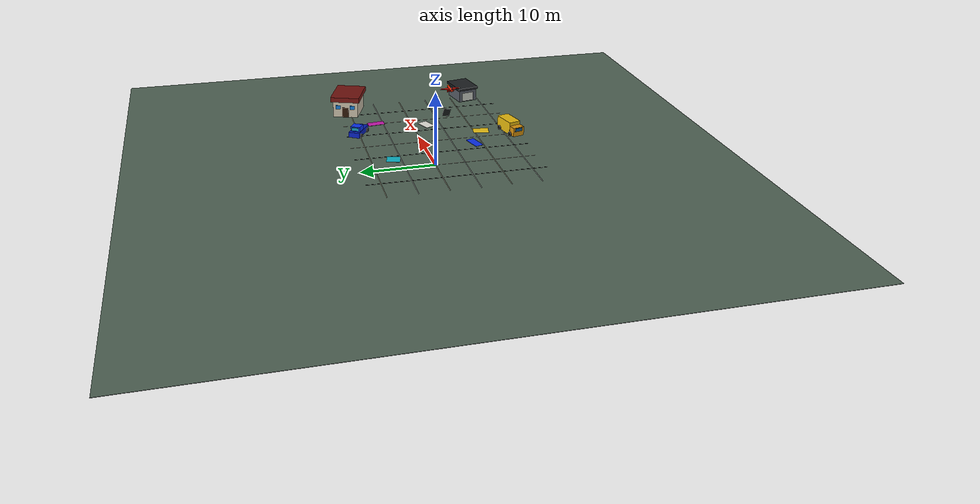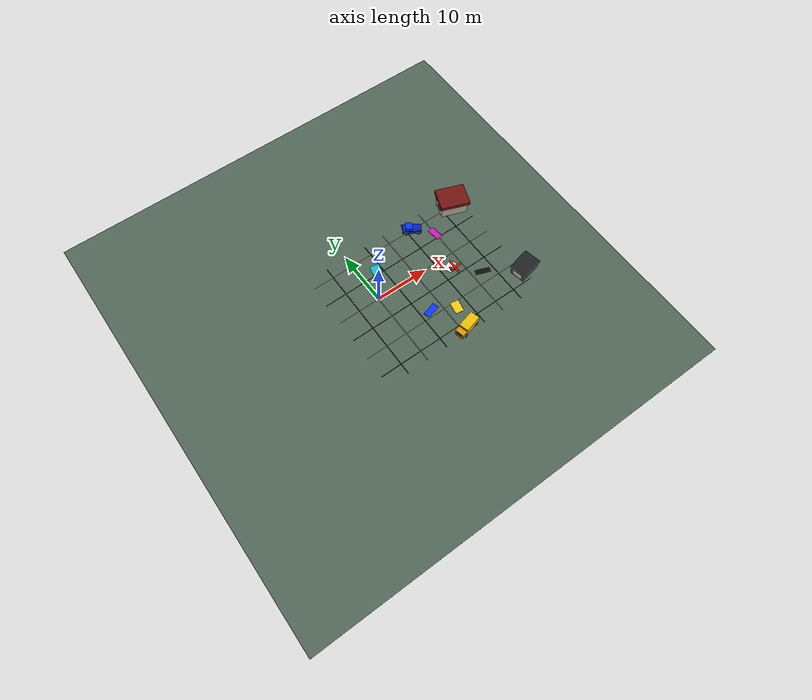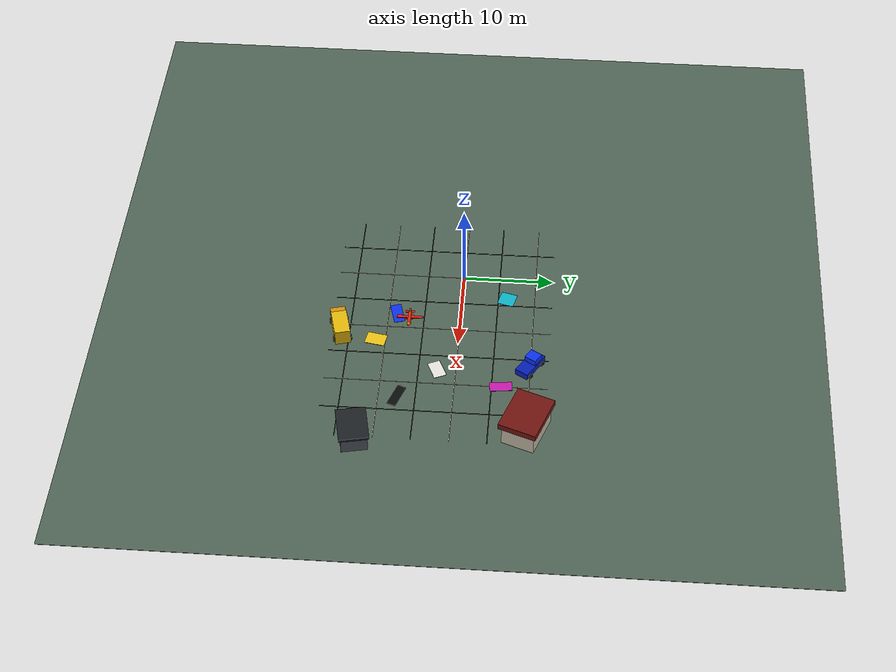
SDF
<sdf version="1.9">
 <world name="vulture_x_test">
  <physics name="1ms" type="ignore">
   <max_step_size>0.001</max_step_size>
   <real_time_factor>1.0</real_time_factor>
  </physics>
  <plugin filename="gz-sim-physics-system" name="gz::sim::systems::Physics"/>
  <plugin filename="gz-sim-sensors-system" name="gz::sim::systems::Sensors">
   <render_engine>ogre2</render_engine>
  </plugin>
  <plugin filename="gz-sim-user-commands-system" name="gz::sim::systems::UserCommands"/>
  <plugin filename="gz-sim-scene-broadcaster-system" name="gz::sim::systems::SceneBroadcaster"/>
  <plugin filename="gz-sim-imu-system" name="gz::sim::systems::Imu"/>
  <plugin filename="gz-sim-navsat-system" name="gz::sim::systems::NavSat"/>
  <scene><ambient>0.9 0.9 0.9</ambient><background>0.65 0.72 0.78</background></scene>
  <spherical_coordinates>
   <latitude_deg>-35.363262</latitude_deg>
   <longitude_deg>149.165237</longitude_deg>
   <elevation>584</elevation>
   <heading_deg>0</heading_deg>
   <surface_model>EARTH_WGS84</surface_model>
  </spherical_coordinates>
  <light type="directional" name="sun">
   <pose>0 0 20 0 0 0</pose>
   <diffuse>0.9 0.9 0.85 1</diffuse>
   <specular>0.3 0.3 0.3 1</specular>
   <attenuation>
    <range>2000</range>
    <constant>0.9</constant>
    <linear>0.01</linear>
    <quadratic>0.001</quadratic>
   </attenuation>
   <direction>-0.4 0.2 -0.9</direction>
  </light>
  <model name="open_test_area">
   <static>true</static>
   <link name="link">
    <collision name="ground_collision"><geometry><box><size>80 80 0.05</size></box></geometry></collision>
    <visual name="ground_visual">
     <geometry><box><size>80 80 0.05</size></box></geometry>
     <material><ambient>0.26 0.32 0.28 1</ambient><diffuse>0.32 0.40 0.34 1</diffuse></material>
    </visual>
    <visual name="center_line">
     <pose>8 0 0.04 0 0 0</pose>
     <geometry><box><size>28 0.08 0.02</size></box></geometry>
     <material><ambient>1 1 1 1</ambient><diffuse>1 1 1 1</diffuse></material>
    </visual>
   </link>
  </model>
  <model name="tracking_feature_field">
   <static>true</static>
   <link name="link">
    <visual name="grid_x_neg12">
     <pose>8 -12 0.075 0 0 0</pose>
     <geometry><box><size>32 0.08 0.02</size></box></geometry>
     <material><ambient>0.08 0.09 0.08 1</ambient><diffuse>0.08 0.09 0.08 1</diffuse></material>
    </visual>
    <visual name="grid_x_neg8">
     <pose>8 -8 0.075 0 0 0</pose>
     <geometry><box><size>32 0.08 0.02</size></box></geometry>
     <material><ambient>0.88 0.88 0.76 1</ambient><diffuse>0.88 0.88 0.76 1</diffuse></material>
    </visual>
    <visual name="grid_x_neg4">
     <pose>8 -4 0.075 0 0 0</pose>
     <geometry><box><size>32 0.08 0.02</size></box></geometry>
     <material><ambient>0.08 0.09 0.08 1</ambient><diffuse>0.08 0.09 0.08 1</diffuse></material>
    </visual>
    <visual name="grid_x_0">
     <pose>8 0 0.075 0 0 0</pose>
     <geometry><box><size>32 0.08 0.02</size></box></geometry>
     <material><ambient>0.88 0.88 0.76 1</ambient><diffuse>0.88 0.88 0.76 1</diffuse></material>
    </visual>
    <visual name="grid_x_4">
     <pose>8 4 0.075 0 0 0</pose>
     <geometry><box><size>32 0.08 0.02</size></box></geometry>
     <material><ambient>0.08 0.09 0.08 1</ambient><diffuse>0.08 0.09 0.08 1</diffuse></material>
    </visual>
    <visual name="grid_x_8">
     <pose>8 8 0.075 0 0 0</pose>
     <geometry><box><size>32 0.08 0.02</size></box></geometry>
     <material><ambient>0.88 0.88 0.76 1</ambient><diffuse>0.88 0.88 0.76 1</diffuse></material>
    </visual>
    <visual name="grid_y_neg4">
     <pose>-4 -2 0.078 0 0 0</pose>
     <geometry><box><size>0.08 24 0.02</size></box></geometry>
     <material><ambient>0.10 0.11 0.10 1</ambient><diffuse>0.10 0.11 0.10 1</diffuse></material>
    </visual>
    <visual name="grid_y_0">
     <pose>0 -2 0.078 0 0 0</pose>
     <geometry><box><size>0.08 24 0.02</size></box></geometry>
     <material><ambient>0.86 0.88 0.80 1</ambient><diffuse>0.86 0.88 0.80 1</diffuse></material>
    </visual>
    <visual name="grid_y_4">
     <pose>4 -2 0.078 0 0 0</pose>
     <geometry><box><size>0.08 24 0.02</size></box></geometry>
     <material><ambient>0.10 0.11 0.10 1</ambient><diffuse>0.10 0.11 0.10 1</diffuse></material>
    </visual>
    <visual name="grid_y_8">
     <pose>8 -2 0.078 0 0 0</pose>
     <geometry><box><size>0.08 24 0.02</size></box></geometry>
     <material><ambient>0.86 0.88 0.80 1</ambient><diffuse>0.86 0.88 0.80 1</diffuse></material>
    </visual>
    <visual name="grid_y_12">
     <pose>12 -2 0.078 0 0 0</pose>
     <geometry><box><size>0.08 24 0.02</size></box></geometry>
     <material><ambient>0.10 0.11 0.10 1</ambient><diffuse>0.10 0.11 0.10 1</diffuse></material>
    </visual>
    <visual name="grid_y_16">
     <pose>16 -2 0.078 0 0 0</pose>
     <geometry><box><size>0.08 24 0.02</size></box></geometry>
     <material><ambient>0.86 0.88 0.80 1</ambient><diffuse>0.86 0.88 0.80 1</diffuse></material>
    </visual>
    <visual name="grid_y_20">
     <pose>20 -2 0.078 0 0 0</pose>
     <geometry><box><size>0.08 24 0.02</size></box></geometry>
     <material><ambient>0.10 0.11 0.10 1</ambient><diffuse>0.10 0.11 0.10 1</diffuse></material>
    </visual>
    <visual name="blue_patch">
     <pose>6 -7 0.09 0 0 0.28</pose>
     <geometry><box><size>2.6 1.2 0.03</size></box></geometry>
     <material><ambient>0.05 0.20 0.95 1</ambient><diffuse>0.05 0.20 0.95 1</diffuse></material>
    </visual>
    <visual name="yellow_patch">
     <pose>10 -9 0.09 0 0 -0.18</pose>
     <geometry><box><size>1.6 2.2 0.03</size></box></geometry>
     <material><ambient>0.95 0.78 0.08 1</ambient><diffuse>0.95 0.78 0.08 1</diffuse></material>
    </visual>
    <visual name="white_patch">
     <pose>14 -2 0.09 0 0 0.42</pose>
     <geometry><box><size>2.2 1.4 0.03</size></box></geometry>
     <material><ambient>0.92 0.92 0.88 1</ambient><diffuse>0.92 0.92 0.88 1</diffuse></material>
    </visual>
    <visual name="dark_patch">
     <pose>18 -6 0.09 0 0 -0.35</pose>
     <geometry><box><size>2.8 1.0 0.03</size></box></geometry>
     <material><ambient>0.04 0.05 0.05 1</ambient><diffuse>0.04 0.05 0.05 1</diffuse></material>
    </visual>
    <visual name="cyan_patch">
     <pose>3 5 0.09 0 0 -0.25</pose>
     <geometry><box><size>1.8 1.8 0.03</size></box></geometry>
     <material><ambient>0.05 0.72 0.80 1</ambient><diffuse>0.05 0.72 0.80 1</diffuse></material>
    </visual>
    <visual name="magenta_patch">
     <pose>16 5 0.09 0 0 0.12</pose>
     <geometry><box><size>1.2 2.4 0.03</size></box></geometry>
     <material><ambient>0.80 0.10 0.70 1</ambient><diffuse>0.80 0.10 0.70 1</diffuse></material>
    </visual>
   </link>
  </model>
  <model name="small_house_cluster">
   <pose>22 8 0 0 0 -0.35</pose>
   <static>true</static>
   <link name="link">
    <visual name="house_body">
     <pose>0 0 1.2 0 0 0</pose>
     <geometry><box><size>4.8 3.6 2.4</size></box></geometry>
     <material><ambient>0.76 0.72 0.64 1</ambient><diffuse>0.76 0.72 0.64 1</diffuse></material>
    </visual>
    <visual name="roof">
     <pose>0 0 2.75 0 0 0</pose>
     <geometry><box><size>5.4 4.2 0.7</size></box></geometry>
     <material><ambient>0.45 0.08 0.06 1</ambient><diffuse>0.45 0.08 0.06 1</diffuse></material>
    </visual>
    <visual name="door">
     <pose>-2.42 0 0.75 0 0 0</pose>
     <geometry><box><size>0.04 0.9 1.5</size></box></geometry>
     <material><ambient>0.18 0.09 0.03 1</ambient><diffuse>0.18 0.09 0.03 1</diffuse></material>
    </visual>
    <visual name="window_left">
     <pose>-2.43 -1.05 1.55 0 0 0</pose>
     <geometry><box><size>0.04 0.65 0.55</size></box></geometry>
     <material>
      <ambient>0.08 0.45 0.78 1</ambient>
      <diffuse>0.08 0.45 0.78 1</diffuse>
      <emissive>0.02 0.08 0.12 1</emissive>
     </material>
    </visual>
    <visual name="window_right">
     <pose>-2.43 1.05 1.55 0 0 0</pose>
     <geometry><box><size>0.04 0.65 0.55</size></box></geometry>
     <material>
      <ambient>0.08 0.45 0.78 1</ambient>
      <diffuse>0.08 0.45 0.78 1</diffuse>
      <emissive>0.02 0.08 0.12 1</emissive>
     </material>
    </visual>
   </link>
  </model>
  <model name="garage_shed">
   <pose>24 -10 0 0 0 0.2</pose>
   <static>true</static>
   <link name="link">
    <visual name="shed_body">
     <pose>0 0 0.9 0 0 0</pose>
     <geometry><box><size>3.8 2.8 1.8</size></box></geometry>
     <material><ambient>0.34 0.36 0.40 1</ambient><diffuse>0.34 0.36 0.40 1</diffuse></material>
    </visual>
    <visual name="shed_roof">
     <pose>0 0 2.0 0 0 0</pose>
     <geometry><box><size>4.2 3.2 0.35</size></box></geometry>
     <material><ambient>0.12 0.13 0.14 1</ambient><diffuse>0.12 0.13 0.14 1</diffuse></material>
    </visual>
    <visual name="garage_door">
     <pose>-1.92 0 0.75 0 0 0</pose>
     <geometry><box><size>0.04 1.8 1.25</size></box></geometry>
     <material><ambient>0.80 0.82 0.78 1</ambient><diffuse>0.80 0.82 0.78 1</diffuse></material>
    </visual>
   </link>
  </model>
  <model name="blue_pickup_vehicle">
   <pose>13 8 0 0 0 -0.55</pose>
   <static>true</static>
   <link name="link">
    <visual name="body">
     <pose>0 0 0.45 0 0 0</pose>
     <geometry><box><size>3.4 1.55 0.75</size></box></geometry>
     <material><ambient>0.02 0.12 0.72 1</ambient><diffuse>0.02 0.12 0.72 1</diffuse></material>
    </visual>
    <visual name="cabin">
     <pose>-0.55 0 1.05 0 0 0</pose>
     <geometry><box><size>1.25 1.35 0.85</size></box></geometry>
     <material><ambient>0.04 0.20 0.95 1</ambient><diffuse>0.04 0.20 0.95 1</diffuse></material>
    </visual>
    <visual name="windshield">
     <pose>-1.2 0 1.14 0 0 0</pose>
     <geometry><box><size>0.06 1.05 0.45</size></box></geometry>
     <material><ambient>0.06 0.55 0.70 1</ambient><diffuse>0.06 0.55 0.70 1</diffuse></material>
    </visual>
    <visual name="wheel_fl">
     <pose>-1.05 -0.86 0.25 1.5708 0 0</pose>
     <geometry><cylinder><radius>0.28</radius><length>0.18</length></cylinder></geometry>
     <material><ambient>0.02 0.02 0.02 1</ambient><diffuse>0.02 0.02 0.02 1</diffuse></material>
    </visual>
    <visual name="wheel_fr">
     <pose>-1.05 0.86 0.25 1.5708 0 0</pose>
     <geometry><cylinder><radius>0.28</radius><length>0.18</length></cylinder></geometry>
     <material><ambient>0.02 0.02 0.02 1</ambient><diffuse>0.02 0.02 0.02 1</diffuse></material>
    </visual>
    <visual name="wheel_rl">
     <pose>1.15 -0.86 0.25 1.5708 0 0</pose>
     <geometry><cylinder><radius>0.28</radius><length>0.18</length></cylinder></geometry>
     <material><ambient>0.02 0.02 0.02 1</ambient><diffuse>0.02 0.02 0.02 1</diffuse></material>
    </visual>
    <visual name="wheel_rr">
     <pose>1.15 0.86 0.25 1.5708 0 0</pose>
     <geometry><cylinder><radius>0.28</radius><length>0.18</length></cylinder></geometry>
     <material><ambient>0.02 0.02 0.02 1</ambient><diffuse>0.02 0.02 0.02 1</diffuse></material>
    </visual>
   </link>
  </model>
  <model name="yellow_box_truck">
   <pose>9 -13 0 0 0 0.25</pose>
   <static>true</static>
   <link name="link">
    <visual name="cargo_box">
     <pose>0.35 0 0.95 0 0 0</pose>
     <geometry><box><size>3.2 1.7 1.8</size></box></geometry>
     <material><ambient>0.92 0.74 0.05 1</ambient><diffuse>0.92 0.74 0.05 1</diffuse></material>
    </visual>
    <visual name="cab">
     <pose>-1.65 0 0.75 0 0 0</pose>
     <geometry><box><size>1.3 1.65 1.25</size></box></geometry>
     <material><ambient>0.86 0.58 0.04 1</ambient><diffuse>0.86 0.58 0.04 1</diffuse></material>
    </visual>
    <visual name="truck_window">
     <pose>-2.32 0 1.05 0 0 0</pose>
     <geometry><box><size>0.05 1.1 0.45</size></box></geometry>
     <material><ambient>0.05 0.36 0.62 1</ambient><diffuse>0.05 0.36 0.62 1</diffuse></material>
    </visual>
    <visual name="truck_wheel_fl">
     <pose>-1.45 -0.92 0.28 1.5708 0 0</pose>
     <geometry><cylinder><radius>0.32</radius><length>0.2</length></cylinder></geometry>
     <material><ambient>0.02 0.02 0.02 1</ambient><diffuse>0.02 0.02 0.02 1</diffuse></material>
    </visual>
    <visual name="truck_wheel_fr">
     <pose>-1.45 0.92 0.28 1.5708 0 0</pose>
     <geometry><cylinder><radius>0.32</radius><length>0.2</length></cylinder></geometry>
     <material><ambient>0.02 0.02 0.02 1</ambient><diffuse>0.02 0.02 0.02 1</diffuse></material>
    </visual>
    <visual name="truck_wheel_rl">
     <pose>1.35 -0.92 0.28 1.5708 0 0</pose>
     <geometry><cylinder><radius>0.32</radius><length>0.2</length></cylinder></geometry>
     <material><ambient>0.02 0.02 0.02 1</ambient><diffuse>0.02 0.02 0.02 1</diffuse></material>
    </visual>
    <visual name="truck_wheel_rr">
     <pose>1.35 0.92 0.28 1.5708 0 0</pose>
     <geometry><cylinder><radius>0.32</radius><length>0.2</length></cylinder></geometry>
     <material><ambient>0.02 0.02 0.02 1</ambient><diffuse>0.02 0.02 0.02 1</diffuse></material>
    </visual>
   </link>
  </model>
  <model name="target_marker">
   <pose>12 -5 6.0 0 0 3.14159</pose>
   <static>true</static>
   <link name="link">
    <collision name="collision"><geometry><box><size>1.8 2.6 0.55</size></box></geometry></collision>
    <visual name="fuselage">
     <pose>0 0 0 0 1.5708 0</pose>
     <geometry><cylinder><radius>0.16</radius><length>1.8</length></cylinder></geometry>
     <material>
      <ambient>1.0 0.18 0.03 1</ambient>
      <diffuse>1.0 0.18 0.03 1</diffuse>
      <emissive>0.45 0.05 0.01 1</emissive>
     </material>
    </visual>
    <visual name="nose">
     <pose>-0.98 0 0 0 0 0</pose>
     <geometry><sphere><radius>0.22</radius></sphere></geometry>
     <material>
      <ambient>1.0 0.42 0.02 1</ambient>
      <diffuse>1.0 0.42 0.02 1</diffuse>
      <emissive>0.35 0.08 0.01 1</emissive>
     </material>
    </visual>
    <visual name="main_wing">
     <geometry><box><size>0.34 2.6 0.08</size></box></geometry>
     <material>
      <ambient>1.0 0.1 0.05 1</ambient>
      <diffuse>1.0 0.1 0.05 1</diffuse>
      <emissive>0.5 0.02 0.01 1</emissive>
     </material>
    </visual>
    <visual name="tailplane">
     <pose>0.74 0 0.02 0 0 0</pose>
     <geometry><box><size>0.26 0.95 0.06</size></box></geometry>
     <material>
      <ambient>0.95 0.12 0.03 1</ambient>
      <diffuse>0.95 0.12 0.03 1</diffuse>
      <emissive>0.35 0.02 0.01 1</emissive>
     </material>
    </visual>
    <visual name="high_visibility_keel">
     <pose>0.08 0 -0.22 0 0 0</pose>
     <geometry><box><size>0.12 0.85 0.36</size></box></geometry>
     <material>
      <ambient>1.0 0.08 0.02 1</ambient>
      <diffuse>1.0 0.08 0.02 1</diffuse>
      <emissive>0.55 0.02 0.01 1</emissive>
     </material>
    </visual>
    <visual name="vertical_tail">
     <pose>0.72 0 0.27 0 0 0</pose>
     <geometry><box><size>0.24 0.08 0.45</size></box></geometry>
     <material><ambient>0.10 0.10 0.12 1</ambient><diffuse>0.10 0.10 0.12 1</diffuse></material>
    </visual>
    <visual name="left_wing_tip">
     <pose>0 -1.35 0 0 0 0</pose>
     <geometry><box><size>0.20 0.14 0.10</size></box></geometry>
     <material><ambient>0.05 0.05 0.05 1</ambient><diffuse>0.05 0.05 0.05 1</diffuse></material>
    </visual>
    <visual name="right_wing_tip">
     <pose>0 1.35 0 0 0 0</pose>
     <geometry><box><size>0.20 0.14 0.10</size></box></geometry>
     <material><ambient>0.05 0.05 0.05 1</ambient><diffuse>0.05 0.05 0.05 1</diffuse></material>
    </visual>
   </link>
  </model>
 </world>
</sdf>
